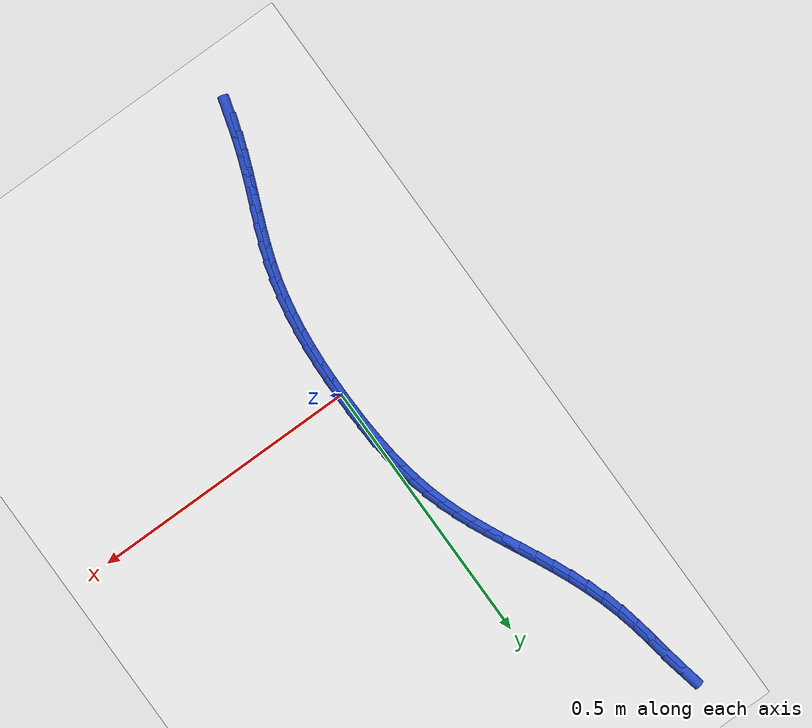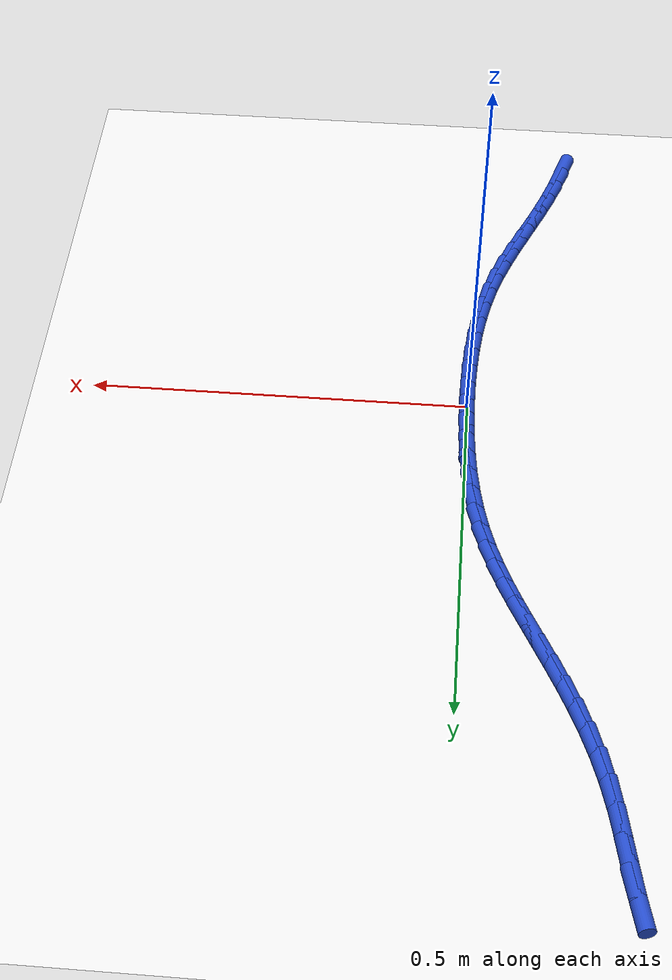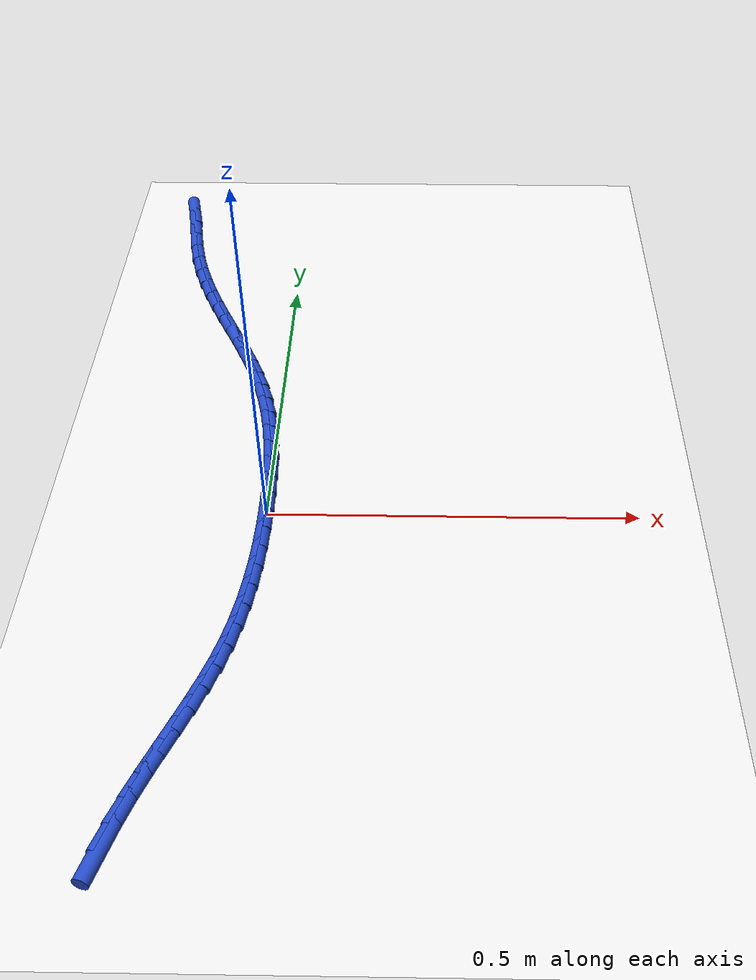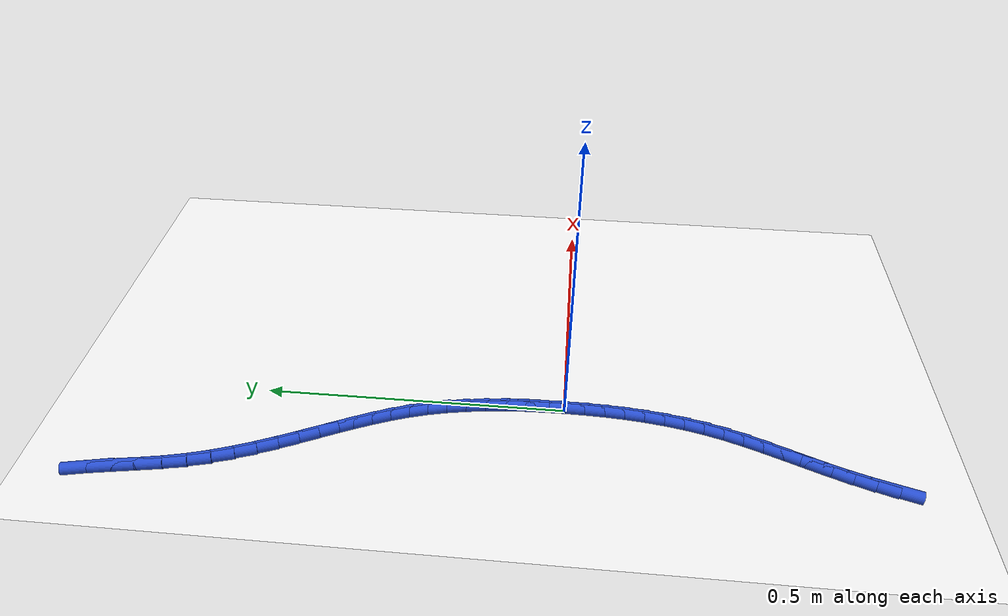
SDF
<sdf version="1.6">
 <world name="default">
  <model name="ground_plane">
   <static>1</static>
   <link name="link">
    <collision name="collision">
     <geometry><plane><normal>0 0 1</normal><size>100 100</size></plane></geometry>
     <surface><friction><ode><mu>100</mu><mu2>50</mu2></ode></friction></surface>
    </collision>
    <visual name="visual">
     <cast_shadows>0</cast_shadows>
     <geometry><plane><normal>0 0 1</normal><size>100 100</size></plane></geometry>
     <material>
      <script><uri>file://media/materials/scripts/gazebo.material</uri><name>Gazebo/WhiteGlow</name></script>
     </material>
    </visual>
   </link>
  </model>
  <model name="line">
   <link name="link_0">
    <pose>-1.9949319973733282e-17 -6.938893903907228e-18 0.01 0 1.57 -1.559420882851441</pose>
    <collision name="collision">
     <geometry><cylinder><radius>0.01</radius><length>0.08</length></cylinder></geometry>
    </collision>
    <visual name="visual">
     <material>
      <script><name>Gazebo/Blue</name><uri>file://media/materials/scripts/gazebo.material</uri></script>
     </material>
     <geometry><cylinder><radius>0.01</radius><length>0.08</length></cylinder></geometry>
    </visual>
   </link>
   <link name="link_1">
    <pose>-0.0003757697735197064 0.033031991274708815 0.01 0 1.57 -1.5334565466409051</pose>
    <collision name="collision">
     <geometry><cylinder><radius>0.01</radius><length>0.08</length></cylinder></geometry>
    </collision>
    <visual name="visual">
     <material>
      <script><name>Gazebo/Blue</name><uri>file://media/materials/scripts/gazebo.material</uri></script>
     </material>
     <geometry><cylinder><radius>0.01</radius><length>0.08</length></cylinder></geometry>
    </visual>
   </link>
   <link name="link_2">
    <pose>-0.0016078858074410516 0.06601406417152815 0.01 0 1.57 -1.503292751838299</pose>
    <collision name="collision">
     <geometry><cylinder><radius>0.01</radius><length>0.08</length></cylinder></geometry>
    </collision>
    <visual name="visual">
     <material>
      <script><name>Gazebo/Blue</name><uri>file://media/materials/scripts/gazebo.material</uri></script>
     </material>
     <geometry><cylinder><radius>0.01</radius><length>0.08</length></cylinder></geometry>
    </visual>
   </link>
   <link name="link_3">
    <pose>-0.003825413582089171 0.09881467547785544 0.01 0 1.57 -1.4685913513282585</pose>
    <collision name="collision">
     <geometry><cylinder><radius>0.01</radius><length>0.08</length></cylinder></geometry>
    </collision>
    <visual name="visual">
     <material>
      <script><name>Gazebo/Blue</name><uri>file://media/materials/scripts/gazebo.material</uri></script>
     </material>
     <geometry><cylinder><radius>0.01</radius><length>0.08</length></cylinder></geometry>
    </visual>
   </link>
   <link name="link_4">
    <pose>-0.0071574185777891885 0.13130228198108806 0.01 0 1.57 -1.4289614217760707</pose>
    <collision name="collision">
     <geometry><cylinder><radius>0.01</radius><length>0.08</length></cylinder></geometry>
    </collision>
    <visual name="visual">
     <material>
      <script><name>Gazebo/Blue</name><uri>file://media/materials/scripts/gazebo.material</uri></script>
     </material>
     <geometry><cylinder><radius>0.01</radius><length>0.08</length></cylinder></geometry>
    </visual>
   </link>
   <link name="link_5">
    <pose>-0.011732966274866218 0.1633453404686234 0.01 0 1.57 -1.3839721285990907</pose>
    <collision name="collision">
     <geometry><cylinder><radius>0.01</radius><length>0.08</length></cylinder></geometry>
    </collision>
    <visual name="visual">
     <material>
      <script><name>Gazebo/Blue</name><uri>file://media/materials/scripts/gazebo.material</uri></script>
     </material>
     <geometry><cylinder><radius>0.01</radius><length>0.08</length></cylinder></geometry>
    </visual>
   </link>
   <link name="link_6">
    <pose>-0.01768112215364538 0.19481230772785882 0.01 0 1.57 -1.3331746888996971</pose>
    <collision name="collision">
     <geometry><cylinder><radius>0.01</radius><length>0.08</length></cylinder></geometry>
    </collision>
    <visual name="visual">
     <material>
      <script><name>Gazebo/Blue</name><uri>file://media/materials/scripts/gazebo.material</uri></script>
     </material>
     <geometry><cylinder><radius>0.01</radius><length>0.08</length></cylinder></geometry>
    </visual>
   </link>
   <link name="link_7">
    <pose>-0.0251309516944518 0.22557164054619178 0.01 0 1.57 -1.2765699733630187</pose>
    <collision name="collision">
     <geometry><cylinder><radius>0.01</radius><length>0.08</length></cylinder></geometry>
    </collision>
    <visual name="visual">
     <material>
      <script><name>Gazebo/Blue</name><uri>file://media/materials/scripts/gazebo.material</uri></script>
     </material>
     <geometry><cylinder><radius>0.01</radius><length>0.08</length></cylinder></geometry>
    </visual>
   </link>
   <link name="link_8">
    <pose>-0.0342002856469406 0.2555013281147541 0.01 0 1.57 -1.2222570456791524</pose>
    <collision name="collision">
     <geometry><cylinder><radius>0.01</radius><length>0.08</length></cylinder></geometry>
    </collision>
    <visual name="visual">
     <material>
      <script><name>Gazebo/Blue</name><uri>file://media/materials/scripts/gazebo.material</uri></script>
     </material>
     <geometry><cylinder><radius>0.01</radius><length>0.08</length></cylinder></geometry>
    </visual>
   </link>
   <link name="link_9">
    <pose>-0.044795380790588236 0.2846588751433571 0.01 0 1.57 -1.1783652020640774</pose>
    <collision name="collision">
     <geometry><cylinder><radius>0.01</radius><length>0.08</length></cylinder></geometry>
    </collision>
    <visual name="visual">
     <material>
      <script><name>Gazebo/Blue</name><uri>file://media/materials/scripts/gazebo.material</uri></script>
     </material>
     <geometry><cylinder><radius>0.01</radius><length>0.08</length></cylinder></geometry>
    </visual>
   </link>
   <link name="link_10">
    <pose>-0.056634065349829045 0.3132616635221846 0.01 0 1.57 -1.1458392550065164</pose>
    <collision name="collision">
     <geometry><cylinder><radius>0.01</radius><length>0.08</length></cylinder></geometry>
    </collision>
    <visual name="visual">
     <material>
      <script><name>Gazebo/Blue</name><uri>file://media/materials/scripts/gazebo.material</uri></script>
     </material>
     <geometry><cylinder><radius>0.01</radius><length>0.08</length></cylinder></geometry>
    </visual>
   </link>
   <link name="link_11">
    <pose>-0.06942758138792399 0.34153266334368415 0.01 0 1.57 -1.1249589839583742</pose>
    <collision name="collision">
     <geometry><cylinder><radius>0.01</radius><length>0.08</length></cylinder></geometry>
    </collision>
    <visual name="visual">
     <material>
      <script><name>Gazebo/Blue</name><uri>file://media/materials/scripts/gazebo.material</uri></script>
     </material>
     <geometry><cylinder><radius>0.01</radius><length>0.08</length></cylinder></geometry>
    </visual>
   </link>
   <link name="link_12">
    <pose>-0.08288717096813407 0.3696948447003036 0.01 0 1.57 -1.1157083366132217</pose>
    <collision name="collision">
     <geometry><cylinder><radius>0.01</radius><length>0.08</length></cylinder></geometry>
    </collision>
    <visual name="visual">
     <material>
      <script><name>Gazebo/Blue</name><uri>file://media/materials/scripts/gazebo.material</uri></script>
     </material>
     <geometry><cylinder><radius>0.01</radius><length>0.08</length></cylinder></geometry>
    </visual>
   </link>
   <link name="link_13">
    <pose>-0.09672407615372024 0.39797117768449086 0.01 0 1.57 -1.117865153257444</pose>
    <collision name="collision">
     <geometry><cylinder><radius>0.01</radius><length>0.08</length></cylinder></geometry>
    </collision>
    <visual name="visual">
     <material>
      <script><name>Gazebo/Blue</name><uri>file://media/materials/scripts/gazebo.material</uri></script>
     </material>
     <geometry><cylinder><radius>0.01</radius><length>0.08</length></cylinder></geometry>
    </visual>
   </link>
   <link name="link_14">
    <pose>-0.11064953900794354 0.42658463238869343 0.01 0 1.57 -1.1310509919139706</pose>
    <collision name="collision">
     <geometry><cylinder><radius>0.01</radius><length>0.08</length></cylinder></geometry>
    </collision>
    <visual name="visual">
     <material>
      <script><name>Gazebo/Blue</name><uri>file://media/materials/scripts/gazebo.material</uri></script>
     </material>
     <geometry><cylinder><radius>0.01</radius><length>0.08</length></cylinder></geometry>
    </visual>
   </link>
   <link name="link_15">
    <pose>-0.12437480159406486 0.4557581789053591 0.01 0 1.57 -1.1547412205188685</pose>
    <collision name="collision">
     <geometry><cylinder><radius>0.01</radius><length>0.08</length></cylinder></geometry>
    </collision>
    <visual name="visual">
     <material>
      <script><name>Gazebo/Blue</name><uri>file://media/materials/scripts/gazebo.material</uri></script>
     </material>
     <geometry><cylinder><radius>0.01</radius><length>0.08</length></cylinder></geometry>
    </visual>
   </link>
   <link name="link_16">
    <pose>-0.13761110597534526 0.4857147873269357 0.01 0 1.57 -1.1882443308466029</pose>
    <collision name="collision">
     <geometry><cylinder><radius>0.01</radius><length>0.08</length></cylinder></geometry>
    </collision>
    <visual name="visual">
     <material>
      <script><name>Gazebo/Blue</name><uri>file://media/materials/scripts/gazebo.material</uri></script>
     </material>
     <geometry><cylinder><radius>0.01</radius><length>0.08</length></cylinder></geometry>
    </visual>
   </link>
   <link name="link_17">
    <pose>-0.15006969421504573 0.516677427745871 0.01 0 1.57 -1.23066538115593</pose>
    <collision name="collision">
     <geometry><cylinder><radius>0.01</radius><length>0.08</length></cylinder></geometry>
    </collision>
    <visual name="visual">
     <material>
      <script><name>Gazebo/Blue</name><uri>file://media/materials/scripts/gazebo.material</uri></script>
     </material>
     <geometry><cylinder><radius>0.01</radius><length>0.08</length></cylinder></geometry>
    </visual>
   </link>
   <link name="link_18">
    <pose>-0.16146180837642718 0.5488690702546125 0.01 0 1.57 -1.280872821325462</pose>
    <collision name="collision">
     <geometry><cylinder><radius>0.01</radius><length>0.08</length></cylinder></geometry>
    </collision>
    <visual name="visual">
     <material>
      <script><name>Gazebo/Blue</name><uri>file://media/materials/scripts/gazebo.material</uri></script>
     </material>
     <geometry><cylinder><radius>0.01</radius><length>0.08</length></cylinder></geometry>
    </visual>
   </link>
   <link name="link_19">
    <pose>-0.17149869052275074 0.5825126849456084 0.01 0 1.57 -1.3368128893181541</pose>
    <collision name="collision">
     <geometry><cylinder><radius>0.01</radius><length>0.08</length></cylinder></geometry>
    </collision>
    <visual name="visual">
     <material>
      <script><name>Gazebo/Blue</name><uri>file://media/materials/scripts/gazebo.material</uri></script>
     </material>
     <geometry><cylinder><radius>0.01</radius><length>0.08</length></cylinder></geometry>
    </visual>
   </link>
   <link name="link_20">
    <pose>-0.1799115522170279 0.6178090660223318 0.01 0 1.57 -1.3813441241194686</pose>
    <collision name="collision">
     <geometry><cylinder><radius>0.01</radius><length>0.08</length></cylinder></geometry>
    </collision>
    <visual name="visual">
     <material>
      <script><name>Gazebo/Blue</name><uri>file://media/materials/scripts/gazebo.material</uri></script>
     </material>
     <geometry><cylinder><radius>0.01</radius><length>0.08</length></cylinder></geometry>
    </visual>
   </link>
   <link name="link_21">
    <pose>-0.18692917106644502 0.654406466588551 0.01 0 1.57 -1.4001421490445232</pose>
    <collision name="collision">
     <geometry><cylinder><radius>0.01</radius><length>0.08</length></cylinder></geometry>
    </collision>
    <visual name="visual">
     <material>
      <script><name>Gazebo/Blue</name><uri>file://media/materials/scripts/gazebo.material</uri></script>
     </material>
     <geometry><cylinder><radius>0.01</radius><length>0.08</length></cylinder></geometry>
    </visual>
   </link>
   <link name="link_22">
    <pose>-0.1933001274038336 0.6913759050813586 0.01 0 1.57 -1.3940900047952003</pose>
    <collision name="collision">
     <geometry><cylinder><radius>0.01</radius><length>0.08</length></cylinder></geometry>
    </collision>
    <visual name="visual">
     <material>
      <script><name>Gazebo/Blue</name><uri>file://media/materials/scripts/gazebo.material</uri></script>
     </material>
     <geometry><cylinder><radius>0.01</radius><length>0.08</length></cylinder></geometry>
    </visual>
   </link>
   <link name="link_23">
    <pose>-0.19979742106321252 0.7277612823758701 0.01 0 1.57 -1.3616300016028433</pose>
    <collision name="collision">
     <geometry><cylinder><radius>0.01</radius><length>0.08</length></cylinder></geometry>
    </collision>
    <visual name="visual">
     <material>
      <script><name>Gazebo/Blue</name><uri>file://media/materials/scripts/gazebo.material</uri></script>
     </material>
     <geometry><cylinder><radius>0.01</radius><length>0.08</length></cylinder></geometry>
    </visual>
   </link>
   <link name="link_244">
    <pose>-0.12494839029100764 -0.4996952443269389 0.01 0 1.57 1.28349073989662</pose>
    <collision name="collision">
     <geometry><cylinder><radius>0.01</radius><length>0.08</length></cylinder></geometry>
    </collision>
    <visual name="visual">
     <material>
      <script><name>Gazebo/Blue</name><uri>file://media/materials/scripts/gazebo.material</uri></script>
     </material>
     <geometry><cylinder><radius>0.01</radius><length>0.08</length></cylinder></geometry>
    </visual>
   </link>
   <link name="link_245">
    <pose>-0.11544695837951086 -0.46753940757919954 0.01 0 1.57 1.2410900832007408</pose>
    <collision name="collision">
     <geometry><cylinder><radius>0.01</radius><length>0.08</length></cylinder></geometry>
    </collision>
    <visual name="visual">
     <material>
      <script><name>Gazebo/Blue</name><uri>file://media/materials/scripts/gazebo.material</uri></script>
     </material>
     <geometry><cylinder><radius>0.01</radius><length>0.08</length></cylinder></geometry>
    </visual>
   </link>
   <link name="link_246">
    <pose>-0.10471834813227157 -0.43618723239859736 0.01 0 1.57 1.2063653585158465</pose>
    <collision name="collision">
     <geometry><cylinder><radius>0.01</radius><length>0.08</length></cylinder></geometry>
    </collision>
    <visual name="visual">
     <material>
      <script><name>Gazebo/Blue</name><uri>file://media/materials/scripts/gazebo.material</uri></script>
     </material>
     <geometry><cylinder><radius>0.01</radius><length>0.08</length></cylinder></geometry>
    </visual>
   </link>
   <link name="link_247">
    <pose>-0.09302330676924594 -0.40552941157140765 0.01 0 1.57 1.1847225598359774</pose>
    <collision name="collision">
     <geometry><cylinder><radius>0.01</radius><length>0.08</length></cylinder></geometry>
    </collision>
    <visual name="visual">
     <material>
      <script><name>Gazebo/Blue</name><uri>file://media/materials/scripts/gazebo.material</uri></script>
     </material>
     <geometry><cylinder><radius>0.01</radius><length>0.08</length></cylinder></geometry>
    </visual>
   </link>
   <link name="link_248">
    <pose>-0.08076530141277852 -0.3753723880826284 0.01 0 1.57 1.1765763627787333</pose>
    <collision name="collision">
     <geometry><cylinder><radius>0.01</radius><length>0.08</length></cylinder></geometry>
    </collision>
    <visual name="visual">
     <material>
      <script><name>Gazebo/Blue</name><uri>file://media/materials/scripts/gazebo.material</uri></script>
     </material>
     <geometry><cylinder><radius>0.01</radius><length>0.08</length></cylinder></geometry>
    </visual>
   </link>
   <link name="link_249">
    <pose>-0.0683478767112667 -0.34552255915241054 0.01 0 1.57 1.1822334833132755</pose>
    <collision name="collision">
     <geometry><cylinder><radius>0.01</radius><length>0.08</length></cylinder></geometry>
    </collision>
    <visual name="visual">
     <material>
      <script><name>Gazebo/Blue</name><uri>file://media/materials/scripts/gazebo.material</uri></script>
     </material>
     <geometry><cylinder><radius>0.01</radius><length>0.08</length></cylinder></geometry>
    </visual>
   </link>
   <link name="link_250">
    <pose>-0.05617457731310778 -0.31578632200090484 0.01 0 1.57 1.2019336456499718</pose>
    <collision name="collision">
     <geometry><cylinder><radius>0.01</radius><length>0.08</length></cylinder></geometry>
    </collision>
    <visual name="visual">
     <material>
      <script><name>Gazebo/Blue</name><uri>file://media/materials/scripts/gazebo.material</uri></script>
     </material>
     <geometry><cylinder><radius>0.01</radius><length>0.08</length></cylinder></geometry>
    </visual>
   </link>
   <link name="link_251">
    <pose>-0.044648947866699165 -0.2859700738482621 0.01 0 1.57 1.235811190224548</pose>
    <collision name="collision">
     <geometry><cylinder><radius>0.01</radius><length>0.08</length></cylinder></geometry>
    </collision>
    <visual name="visual">
     <material>
      <script><name>Gazebo/Blue</name><uri>file://media/materials/scripts/gazebo.material</uri></script>
     </material>
     <geometry><cylinder><radius>0.01</radius><length>0.08</length></cylinder></geometry>
    </visual>
   </link>
   <link name="link_252">
    <pose>-0.03417453302043791 -0.25588021191463245 0.01 0 1.57 1.2834847761069217</pose>
    <collision name="collision">
     <geometry><cylinder><radius>0.01</radius><length>0.08</length></cylinder></geometry>
    </collision>
    <visual name="visual">
     <material>
      <script><name>Gazebo/Blue</name><uri>file://media/materials/scripts/gazebo.material</uri></script>
     </material>
     <geometry><cylinder><radius>0.01</radius><length>0.08</length></cylinder></geometry>
    </visual>
   </link>
   <link name="link_253">
    <pose>-0.025146513800449383 -0.22532722325329826 0.01 0 1.57 1.3363326922737868</pose>
    <collision name="collision">
     <geometry><cylinder><radius>0.01</radius><length>0.08</length></cylinder></geometry>
    </collision>
    <visual name="visual">
     <material>
      <script><name>Gazebo/Blue</name><uri>file://media/materials/scripts/gazebo.material</uri></script>
     </material>
     <geometry><cylinder><radius>0.01</radius><length>0.08</length></cylinder></geometry>
    </visual>
   </link>
   <link name="link_254">
    <pose>-0.017720789924936742 -0.19423860410191407 0.01 0 1.57 1.384906893420704</pose>
    <collision name="collision">
     <geometry><cylinder><radius>0.01</radius><length>0.08</length></cylinder></geometry>
    </collision>
    <visual name="visual">
     <material>
      <script><name>Gazebo/Blue</name><uri>file://media/materials/scripts/gazebo.material</uri></script>
     </material>
     <geometry><cylinder><radius>0.01</radius><length>0.08</length></cylinder></geometry>
    </visual>
   </link>
   <link name="link_255">
    <pose>-0.011784587946854384 -0.16267323257748928 0.01 0 1.57 1.428725142437372</pose>
    <collision name="collision">
     <geometry><cylinder><radius>0.01</radius><length>0.08</length></cylinder></geometry>
    </collision>
    <visual name="visual">
     <material>
      <script><name>Gazebo/Blue</name><uri>file://media/materials/scripts/gazebo.material</uri></script>
     </material>
     <geometry><cylinder><radius>0.01</radius><length>0.08</length></cylinder></geometry>
    </visual>
   </link>
   <link name="link_256">
    <pose>-0.007210867679976688 -0.1306969632697451 0.01 0 1.57 1.467877125793157</pose>
    <collision name="collision">
     <geometry><cylinder><radius>0.01</radius><length>0.08</length></cylinder></geometry>
    </collision>
    <visual name="visual">
     <material>
      <script><name>Gazebo/Blue</name><uri>file://media/materials/scripts/gazebo.material</uri></script>
     </material>
     <geometry><cylinder><radius>0.01</radius><length>0.08</length></cylinder></geometry>
    </visual>
   </link>
   <link name="link_257">
    <pose>-0.0038725889380780264 -0.09837565076840281 0.01 0 1.57 1.5025026040306344</pose>
    <collision name="collision">
     <geometry><cylinder><radius>0.01</radius><length>0.08</length></cylinder></geometry>
    </collision>
    <visual name="visual">
     <material>
      <script><name>Gazebo/Blue</name><uri>file://media/materials/scripts/gazebo.material</uri></script>
     </material>
     <geometry><cylinder><radius>0.01</radius><length>0.08</length></cylinder></geometry>
    </visual>
   </link>
   <link name="link_258">
    <pose>-0.001642711534932778 -0.06577514966318368 0.01 0 1.57 1.532766200712173</pose>
    <collision name="collision">
     <geometry><cylinder><radius>0.01</radius><length>0.08</length></cylinder></geometry>
    </collision>
    <visual name="visual">
     <material>
      <script><name>Gazebo/Blue</name><uri>file://media/materials/scripts/gazebo.material</uri></script>
     </material>
     <geometry><cylinder><radius>0.01</radius><length>0.08</length></cylinder></geometry>
    </visual>
   </link>
   <link name="link_259">
    <pose>-0.00039419528431531344 -0.0329613145438089 0.01 0 1.57 1.5588375655002293</pose>
    <collision name="collision">
     <geometry><cylinder><radius>0.01</radius><length>0.08</length></cylinder></geometry>
    </collision>
    <visual name="visual">
     <material>
      <script><name>Gazebo/Blue</name><uri>file://media/materials/scripts/gazebo.material</uri></script>
     </material>
     <geometry><cylinder><radius>0.01</radius><length>0.08</length></cylinder></geometry>
    </visual>
   </link>
   <link name="link_260">
    <pose>-1.0842021724855044e-17 2.5673907444456745e-16 0.01 0 1.57 -1.5607162848661382</pose>
    <collision name="collision">
     <geometry><cylinder><radius>0.01</radius><length>0.08</length></cylinder></geometry>
    </collision>
    <visual name="visual">
     <material>
      <script><name>Gazebo/Blue</name><uri>file://media/materials/scripts/gazebo.material</uri></script>
     </material>
     <geometry><cylinder><radius>0.01</radius><length>0.08</length></cylinder></geometry>
    </visual>
   </link>
   <link name="link_261">
    <pose>-0.0003330854957612414 0.033042939378522526 0.01 0 1.57 -1.5425714431203688</pose>
    <collision name="collision">
     <geometry><cylinder><radius>0.01</radius><length>0.08</length></cylinder></geometry>
    </collision>
    <visual name="visual">
     <material>
      <script><name>Gazebo/Blue</name><uri>file://media/materials/scripts/gazebo.material</uri></script>
     </material>
     <geometry><cylinder><radius>0.01</radius><length>0.08</length></cylinder></geometry>
    </visual>
   </link>
   <link name="link_262">
    <pose>-0.0012664115853733824 0.06610164900203669 0.01 0 1.57 -1.5516401227792427</pose>
    <collision name="collision">
     <geometry><cylinder><radius>0.01</radius><length>0.08</length></cylinder></geometry>
    </collision>
    <visual name="visual">
     <material>
      <script><name>Gazebo/Blue</name><uri>file://media/materials/scripts/gazebo.material</uri></script>
     </material>
     <geometry><cylinder><radius>0.01</radius><length>0.08</length></cylinder></geometry>
    </visual>
   </link>
  </model>
 </world>
</sdf>
